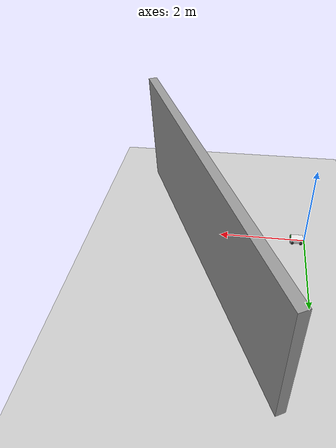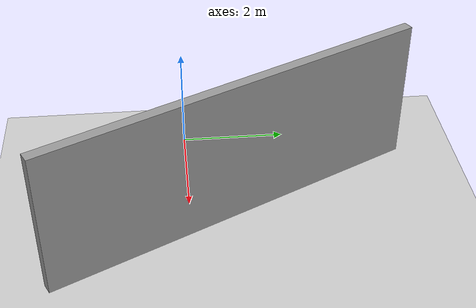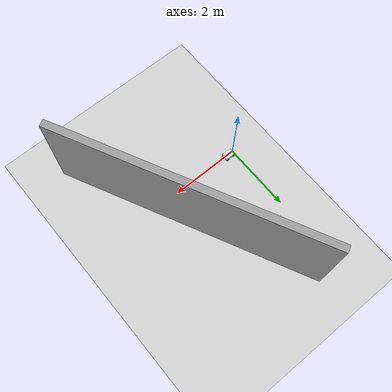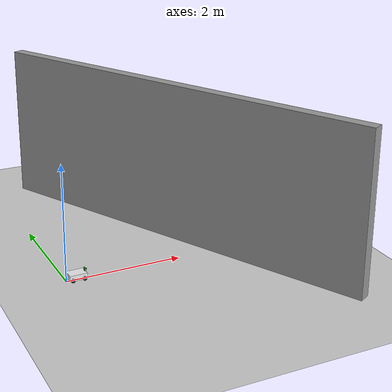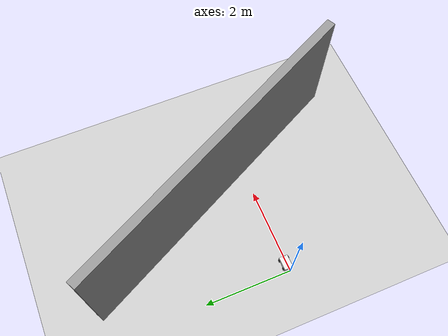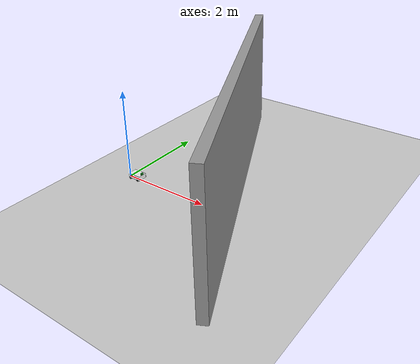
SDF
<sdf version="1.7">
 <world name="default">
  <light name="sun" type="directional">
   <pose>0 0 10 0 -0 0</pose>
   <diffuse>0.8 0.8 0.8 1</diffuse>
   <specular>0.2 0.2 0.2 1</specular>
   <attenuation>
    <range>1000</range>
    <constant>0.9</constant>
    <linear>0.01</linear>
    <quadratic>0.001</quadratic>
   </attenuation>
   <direction>-0.5 0.1 -0.9</direction>
   <spot><inner_angle>0</inner_angle><outer_angle>0</outer_angle><falloff>0</falloff></spot>
  </light>
  <model name="ground_plane">
   <static>1</static>
   <link name="link">
    <collision name="collision">
     <geometry><plane><normal>0 0 1</normal><size>100 100</size></plane></geometry>
     <surface>
      <contact><collide_bitmask>65535</collide_bitmask></contact>
      <friction><ode><mu>100</mu><mu2>50</mu2></ode></friction>
     </surface>
    </collision>
    <visual name="visual">
     <cast_shadows>0</cast_shadows>
     <geometry><plane><normal>0 0 1</normal><size>100 100</size></plane></geometry>
     <material>
      <script><uri>file://media/materials/scripts/gazebo.material</uri><name>Gazebo/Grey</name></script>
     </material>
    </visual>
   </link>
  </model>
  <gravity>0 0 -9.8</gravity>
  <magnetic_field>6e-06 2.3e-05 -4.2e-05</magnetic_field>
  <atmosphere type="adiabatic"/>
  <physics type="ode">
   <max_step_size>0.001</max_step_size>
   <real_time_factor>1</real_time_factor>
   <real_time_update_rate>1000</real_time_update_rate>
  </physics>
  <scene><ambient>0.4 0.4 0.4 1</ambient><background>0.7 0.7 0.7 1</background><shadows>1</shadows></scene>
  <audio><device>default</device></audio>
  <spherical_coordinates>
   <surface_model>EARTH_WGS84</surface_model>
   <latitude_deg>0</latitude_deg>
   <longitude_deg>0</longitude_deg>
   <elevation>0</elevation>
   <heading_deg>0</heading_deg>
  </spherical_coordinates>
  <model name="my_bot">
   <link name="base_link">
    <inertial>
     <pose>-0.009091 0 0.081818 0 -0 0</pose>
     <mass>2.2</mass>
     <inertia>
      <ixx>0.0206487</ixx>
      <ixy>0</ixy>
      <ixz>-0.000636364</ixz>
      <iyy>0.00721091</iyy>
      <iyz>1.0842e-19</iyz>
      <izz>0.0155442</izz>
     </inertia>
    </inertial>
    <collision name="base_link_fixed_joint_lump__chassis_collision">
     <pose>0 0 0.085 0 -0 0</pose>
     <geometry><box><size>0.3 0.2 0.1</size></box></geometry>
    </collision>
    <collision name="base_link_fixed_joint_lump__left_back_wheel_collision_1">
     <pose>-0.1 0.11 0.05 -1.5708 0 0</pose>
     <geometry><cylinder><length>0.02</length><radius>0.035</radius></cylinder></geometry>
     <surface><friction><ode><mu>0.0001</mu><mu2>0.0001</mu2></ode></friction></surface>
    </collision>
    <collision name="base_link_fixed_joint_lump__right_back_wheel_collision_2">
     <pose>-0.1 -0.11 0.05 -1.5708 0 0</pose>
     <geometry><cylinder><length>0.02</length><radius>0.035</radius></cylinder></geometry>
     <surface><friction><ode><mu>0.0001</mu><mu2>0.0001</mu2></ode></friction></surface>
    </collision>
    <visual name="base_link_fixed_joint_lump__chassis_visual">
     <pose>0 0 0.085 0 -0 0</pose>
     <geometry><box><size>0.3 0.2 0.1</size></box></geometry>
     <material>
      <script><name>Gazebo/White</name><uri>file://media/materials/scripts/gazebo.material</uri></script>
     </material>
    </visual>
    <visual name="base_link_fixed_joint_lump__camera_visual_1">
     <pose>0.14 0 0.16 3.14159 1.57079 3.14159</pose>
     <geometry><box><size>0.05 0.06 0.02</size></box></geometry>
     <material>
      <script><name>Gazebo/Green</name><uri>file://media/materials/scripts/gazebo.material</uri></script>
     </material>
    </visual>
    <visual name="base_link_fixed_joint_lump__camera_visual_2">
     <pose>0.15 0 0.16 3.14159 1.57079 3.14159</pose>
     <geometry><cylinder><length>0.04</length><radius>0.015</radius></cylinder></geometry>
     <material>
      <script><name>Gazebo/Green</name><uri>file://media/materials/scripts/gazebo.material</uri></script>
     </material>
    </visual>
    <visual name="base_link_fixed_joint_lump__left_back_wheel_visual_3">
     <pose>-0.1 0.11 0.05 -1.5708 0 0</pose>
     <geometry><cylinder><length>0.02</length><radius>0.035</radius></cylinder></geometry>
     <material>
      <script><name>Gazebo/Black</name><uri>file://media/materials/scripts/gazebo.material</uri></script>
     </material>
    </visual>
    <visual name="base_link_fixed_joint_lump__right_back_wheel_visual_4">
     <pose>-0.1 -0.11 0.05 -1.5708 0 0</pose>
     <geometry><cylinder><length>0.02</length><radius>0.035</radius></cylinder></geometry>
     <material>
      <script><name>Gazebo/Black</name><uri>file://media/materials/scripts/gazebo.material</uri></script>
     </material>
    </visual>
   </link>
   <joint name="left_front_wheel_joint" type="revolute">
    <pose relative_to="base_link">0.1 0.11 0.05 -1.5708 0 0</pose>
    <parent>base_link</parent>
    <child>left_front_wheel</child>
    <axis>
     <xyz>0 0 1</xyz>
     <limit><lower>-1e+16</lower><upper>1e+16</upper></limit>
     <dynamics><spring_reference>0</spring_reference><spring_stiffness>0</spring_stiffness></dynamics>
    </axis>
   </joint>
   <link name="left_front_wheel">
    <pose relative_to="left_front_wheel_joint">0 0 0 0 -0 0</pose>
    <inertial>
     <mass>0.1</mass>
     <inertia><ixx>0.000253</ixx><ixy>0</ixy><ixz>0</ixz><iyy>0.000253</iyy><iyz>0</iyz><izz>0.0005</izz></inertia>
    </inertial>
    <collision name="left_front_wheel_collision">
     <geometry><cylinder><length>0.02</length><radius>0.035</radius></cylinder></geometry>
    </collision>
    <visual name="left_front_wheel_visual">
     <geometry><cylinder><length>0.02</length><radius>0.035</radius></cylinder></geometry>
     <material>
      <script><name>Gazebo/Black</name><uri>file://media/materials/scripts/gazebo.material</uri></script>
     </material>
    </visual>
   </link>
   <joint name="right_front_wheel_joint" type="revolute">
    <pose relative_to="base_link">0.1 -0.11 0.05 -1.5708 0 0</pose>
    <parent>base_link</parent>
    <child>right_front_wheel</child>
    <axis>
     <xyz>0 0 1</xyz>
     <limit><lower>-1e+16</lower><upper>1e+16</upper></limit>
     <dynamics><spring_reference>0</spring_reference><spring_stiffness>0</spring_stiffness></dynamics>
    </axis>
   </joint>
   <link name="right_front_wheel">
    <pose relative_to="right_front_wheel_joint">0 0 0 0 -0 0</pose>
    <inertial>
     <mass>0.1</mass>
     <inertia><ixx>0.000253</ixx><ixy>0</ixy><ixz>0</ixz><iyy>0.000253</iyy><iyz>0</iyz><izz>0.0005</izz></inertia>
    </inertial>
    <collision name="right_front_wheel_collision">
     <geometry><cylinder><length>0.02</length><radius>0.035</radius></cylinder></geometry>
    </collision>
    <visual name="right_front_wheel_visual">
     <geometry><cylinder><length>0.02</length><radius>0.035</radius></cylinder></geometry>
     <material>
      <script><name>Gazebo/Black</name><uri>file://media/materials/scripts/gazebo.material</uri></script>
     </material>
    </visual>
   </link>
   <static>0</static>
   <plugin name="gazebo_ros2_control" filename="libgazebo_ros2_control.so">
    <parameters>/home/tand/second_ros2_ws/install/bearing_formation_control/share/bearing_formation_control/config/ros2_controller.yaml</parameters>
   </plugin>
   <pose>0.189121 0.025913 -0.015009 0 8.9e-05 0.015817</pose>
  </model>
  <model name="grey_wall">
   <static>1</static>
   <link name="link">
    <pose>0 0 1.4 0 -0 0</pose>
    <collision name="collision"><geometry><box><size>7.5 0.2 2.8</size></box></geometry></collision>
    <visual name="visual">
     <cast_shadows>0</cast_shadows>
     <geometry><box><size>7.5 0.2 2.8</size></box></geometry>
     <material>
      <script>
       <uri>model://grey_wall/materials/scripts</uri>
       <uri>model://grey_wall/materials/textures</uri>
       <name>vrc/grey_wall</name>
      </script>
     </material>
    </visual>
   </link>
   <pose>2.29856 0.850542 0 0 0 -1.10569</pose>
  </model>
 </world>
</sdf>
